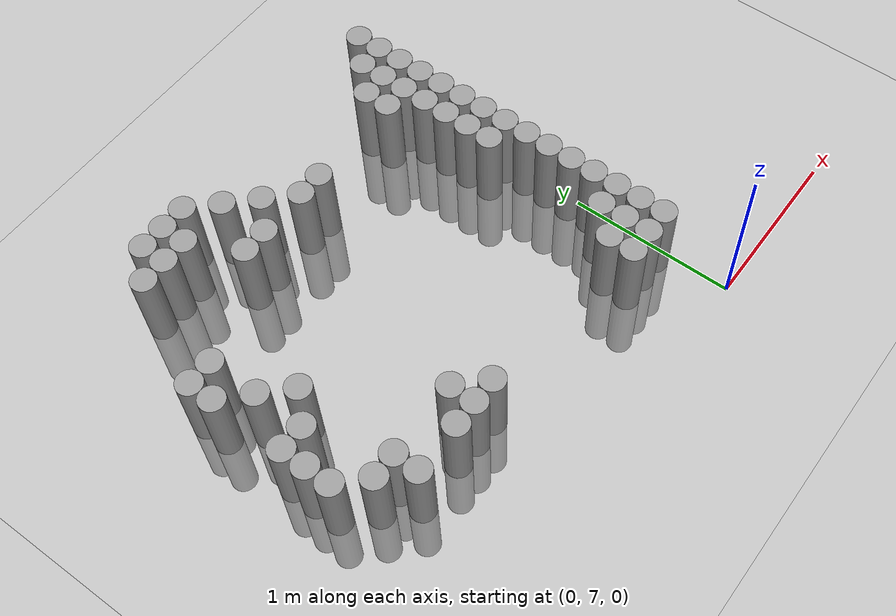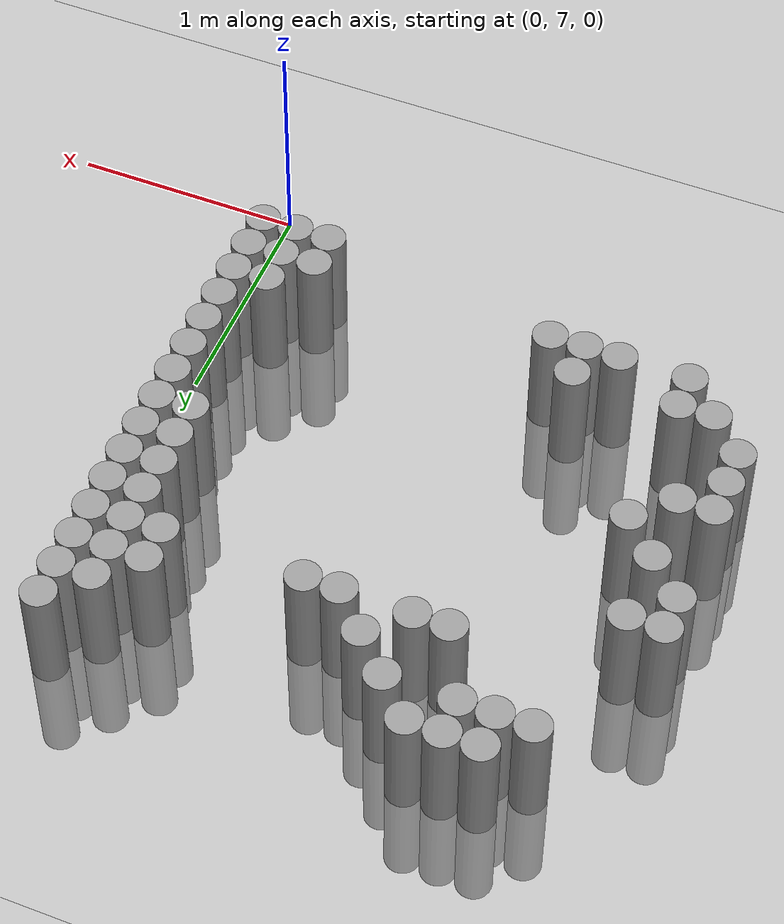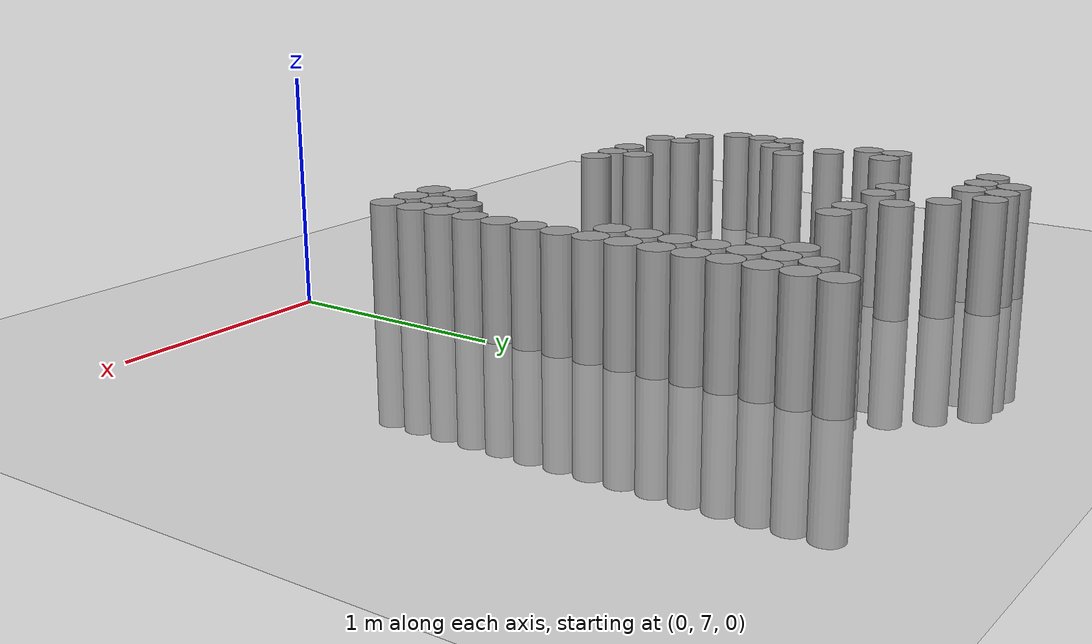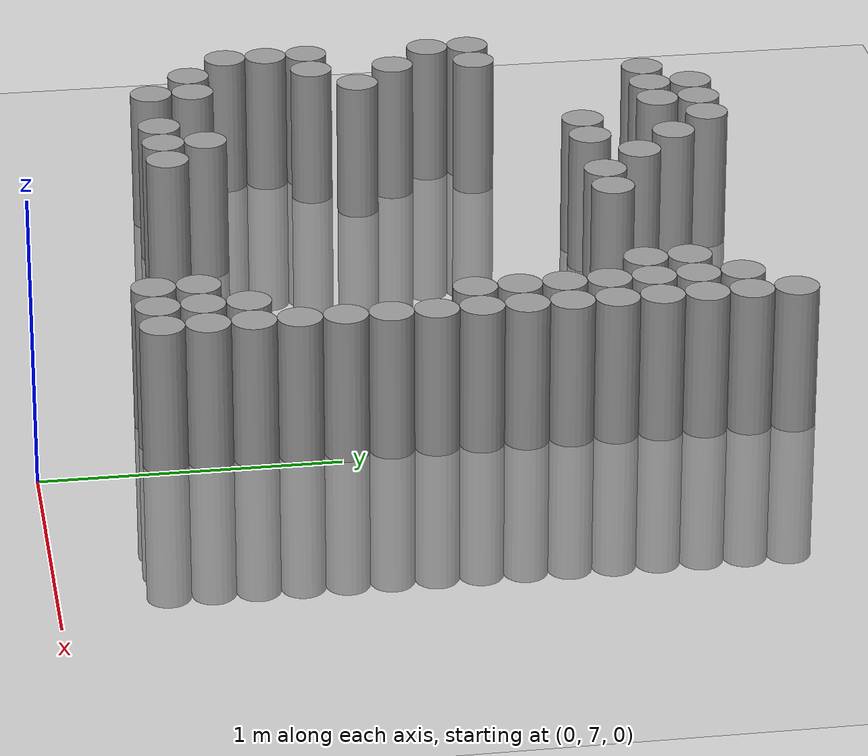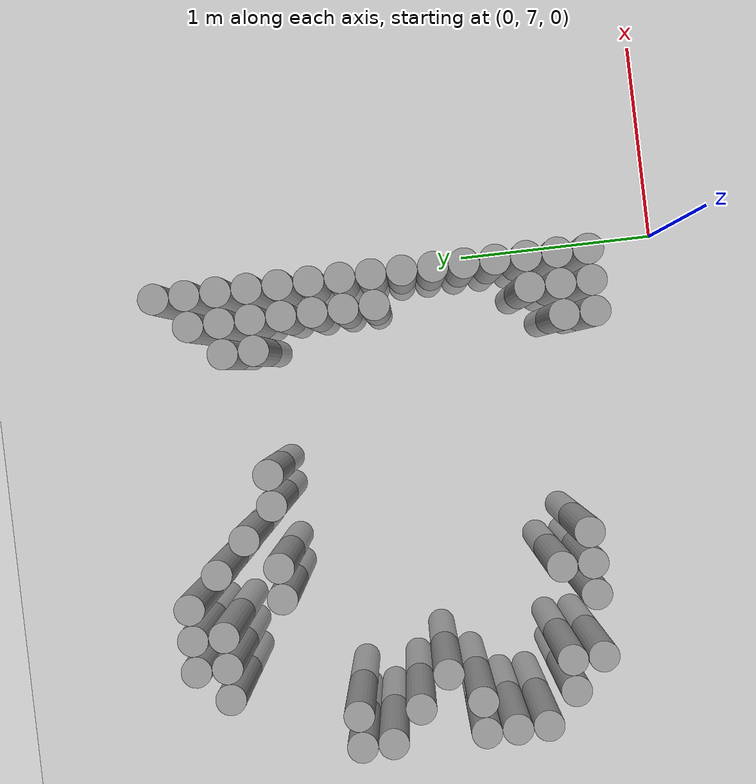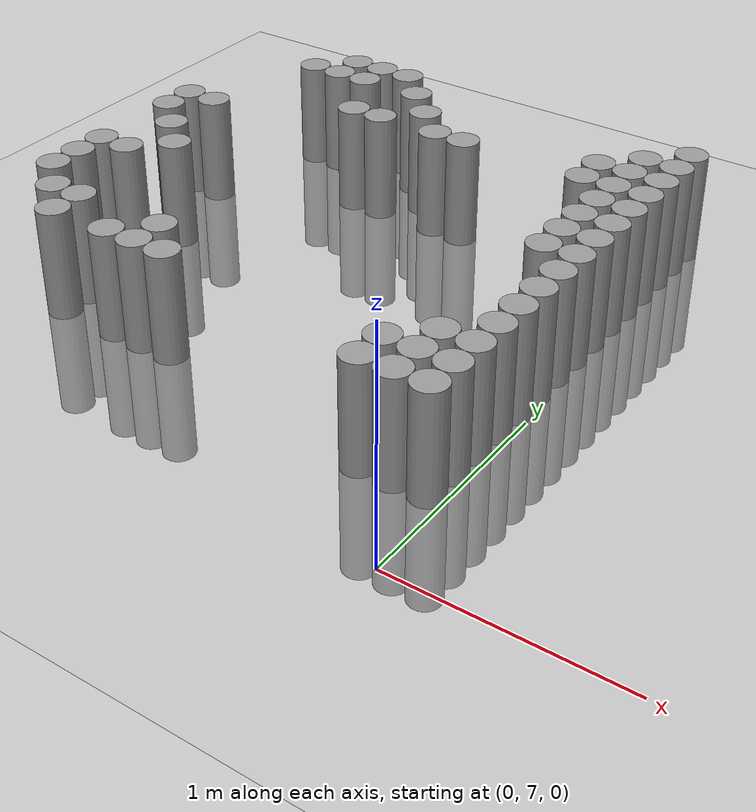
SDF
<sdf version="1.6">
 <world name="default">
  <model name="ground_plane">
   <static>1</static>
   <static>1</static>
   <link name="link">
    <collision name="collision">
     <geometry><plane><normal>0 0 1</normal><size>100 100</size></plane></geometry>
     <surface><friction><ode><mu>100</mu><mu2>50</mu2></ode></friction></surface>
    </collision>
    <visual name="visual">
     <cast_shadows>0</cast_shadows>
     <geometry><plane><normal>0 0 1</normal><size>100 100</size></plane></geometry>
     <material>
      <script><uri>file://media/materials/scripts/gazebo.material</uri><name>Gazebo/Grey</name></script>
     </material>
    </visual>
   </link>
  </model>
  <model name="unit_cylinder_164">
   <static>1</static>
   <pose>-2.325000 7.875000 0.000000 0.000000 0.000000 0.000000</pose>
   <link name="link">
    <inertial>
     <mass>1</mass>
     <inertia><ixx>0.145833</ixx><ixy>0</ixy><ixz>0</ixz><iyy>0.145833</iyy><iyz>0</iyz><izz>0.125</izz></inertia>
    </inertial>
    <collision name="collision">
     <geometry><cylinder><radius>0.075000</radius><length>1</length></cylinder></geometry>
    </collision>
    <visual name="visual">
     <geometry><cylinder><radius>0.075000</radius><length>1</length></cylinder></geometry>
     <material>
      <script><name>Gazebo/Grey</name><uri>file://media/materials/scripts/gazebo.material</uri></script>
     </material>
    </visual>
   </link>
  </model>
  <model name="unit_cylinder_165">
   <static>1</static>
   <pose>-2.325000 8.025000 0.000000 0.000000 0.000000 0.000000</pose>
   <link name="link">
    <inertial>
     <mass>1</mass>
     <inertia><ixx>0.145833</ixx><ixy>0</ixy><ixz>0</ixz><iyy>0.145833</iyy><iyz>0</iyz><izz>0.125</izz></inertia>
    </inertial>
    <collision name="collision">
     <geometry><cylinder><radius>0.075000</radius><length>1</length></cylinder></geometry>
    </collision>
    <visual name="visual">
     <geometry><cylinder><radius>0.075000</radius><length>1</length></cylinder></geometry>
     <material>
      <script><name>Gazebo/Grey</name><uri>file://media/materials/scripts/gazebo.material</uri></script>
     </material>
    </visual>
   </link>
  </model>
  <model name="unit_cylinder_166">
   <static>1</static>
   <pose>-2.325000 8.175000 0.000000 0.000000 0.000000 0.000000</pose>
   <link name="link">
    <inertial>
     <mass>1</mass>
     <inertia><ixx>0.145833</ixx><ixy>0</ixy><ixz>0</ixz><iyy>0.145833</iyy><iyz>0</iyz><izz>0.125</izz></inertia>
    </inertial>
    <collision name="collision">
     <geometry><cylinder><radius>0.075000</radius><length>1</length></cylinder></geometry>
    </collision>
    <visual name="visual">
     <geometry><cylinder><radius>0.075000</radius><length>1</length></cylinder></geometry>
     <material>
      <script><name>Gazebo/Grey</name><uri>file://media/materials/scripts/gazebo.material</uri></script>
     </material>
    </visual>
   </link>
  </model>
  <model name="unit_cylinder_167">
   <static>1</static>
   <pose>-2.325000 8.625000 0.000000 0.000000 0.000000 0.000000</pose>
   <link name="link">
    <inertial>
     <mass>1</mass>
     <inertia><ixx>0.145833</ixx><ixy>0</ixy><ixz>0</ixz><iyy>0.145833</iyy><iyz>0</iyz><izz>0.125</izz></inertia>
    </inertial>
    <collision name="collision">
     <geometry><cylinder><radius>0.075000</radius><length>1</length></cylinder></geometry>
    </collision>
    <visual name="visual">
     <geometry><cylinder><radius>0.075000</radius><length>1</length></cylinder></geometry>
     <material>
      <script><name>Gazebo/Grey</name><uri>file://media/materials/scripts/gazebo.material</uri></script>
     </material>
    </visual>
   </link>
  </model>
  <model name="unit_cylinder_168">
   <static>1</static>
   <pose>-2.325000 8.775000 0.000000 0.000000 0.000000 0.000000</pose>
   <link name="link">
    <inertial>
     <mass>1</mass>
     <inertia><ixx>0.145833</ixx><ixy>0</ixy><ixz>0</ixz><iyy>0.145833</iyy><iyz>0</iyz><izz>0.125</izz></inertia>
    </inertial>
    <collision name="collision">
     <geometry><cylinder><radius>0.075000</radius><length>1</length></cylinder></geometry>
    </collision>
    <visual name="visual">
     <geometry><cylinder><radius>0.075000</radius><length>1</length></cylinder></geometry>
     <material>
      <script><name>Gazebo/Grey</name><uri>file://media/materials/scripts/gazebo.material</uri></script>
     </material>
    </visual>
   </link>
  </model>
  <model name="unit_cylinder_170">
   <static>1</static>
   <pose>-2.175000 7.725000 0.000000 0.000000 0.000000 0.000000</pose>
   <link name="link">
    <inertial>
     <mass>1</mass>
     <inertia><ixx>0.145833</ixx><ixy>0</ixy><ixz>0</ixz><iyy>0.145833</iyy><iyz>0</iyz><izz>0.125</izz></inertia>
    </inertial>
    <collision name="collision">
     <geometry><cylinder><radius>0.075000</radius><length>1</length></cylinder></geometry>
    </collision>
    <visual name="visual">
     <geometry><cylinder><radius>0.075000</radius><length>1</length></cylinder></geometry>
     <material>
      <script><name>Gazebo/Grey</name><uri>file://media/materials/scripts/gazebo.material</uri></script>
     </material>
    </visual>
   </link>
  </model>
  <model name="unit_cylinder_171">
   <static>1</static>
   <pose>-2.175000 8.175000 0.000000 0.000000 0.000000 0.000000</pose>
   <link name="link">
    <inertial>
     <mass>1</mass>
     <inertia><ixx>0.145833</ixx><ixy>0</ixy><ixz>0</ixz><iyy>0.145833</iyy><iyz>0</iyz><izz>0.125</izz></inertia>
    </inertial>
    <collision name="collision">
     <geometry><cylinder><radius>0.075000</radius><length>1</length></cylinder></geometry>
    </collision>
    <visual name="visual">
     <geometry><cylinder><radius>0.075000</radius><length>1</length></cylinder></geometry>
     <material>
      <script><name>Gazebo/Grey</name><uri>file://media/materials/scripts/gazebo.material</uri></script>
     </material>
    </visual>
   </link>
  </model>
  <model name="unit_cylinder_172">
   <static>1</static>
   <pose>-2.175000 8.475000 0.000000 0.000000 0.000000 0.000000</pose>
   <link name="link">
    <inertial>
     <mass>1</mass>
     <inertia><ixx>0.145833</ixx><ixy>0</ixy><ixz>0</ixz><iyy>0.145833</iyy><iyz>0</iyz><izz>0.125</izz></inertia>
    </inertial>
    <collision name="collision">
     <geometry><cylinder><radius>0.075000</radius><length>1</length></cylinder></geometry>
    </collision>
    <visual name="visual">
     <geometry><cylinder><radius>0.075000</radius><length>1</length></cylinder></geometry>
     <material>
      <script><name>Gazebo/Grey</name><uri>file://media/materials/scripts/gazebo.material</uri></script>
     </material>
    </visual>
   </link>
  </model>
  <model name="unit_cylinder_173">
   <static>1</static>
   <pose>-2.175000 8.775000 0.000000 0.000000 0.000000 0.000000</pose>
   <link name="link">
    <inertial>
     <mass>1</mass>
     <inertia><ixx>0.145833</ixx><ixy>0</ixy><ixz>0</ixz><iyy>0.145833</iyy><iyz>0</iyz><izz>0.125</izz></inertia>
    </inertial>
    <collision name="collision">
     <geometry><cylinder><radius>0.075000</radius><length>1</length></cylinder></geometry>
    </collision>
    <visual name="visual">
     <geometry><cylinder><radius>0.075000</radius><length>1</length></cylinder></geometry>
     <material>
      <script><name>Gazebo/Grey</name><uri>file://media/materials/scripts/gazebo.material</uri></script>
     </material>
    </visual>
   </link>
  </model>
  <model name="unit_cylinder_175">
   <static>1</static>
   <pose>-2.025000 7.575000 0.000000 0.000000 0.000000 0.000000</pose>
   <link name="link">
    <inertial>
     <mass>1</mass>
     <inertia><ixx>0.145833</ixx><ixy>0</ixy><ixz>0</ixz><iyy>0.145833</iyy><iyz>0</iyz><izz>0.125</izz></inertia>
    </inertial>
    <collision name="collision">
     <geometry><cylinder><radius>0.075000</radius><length>1</length></cylinder></geometry>
    </collision>
    <visual name="visual">
     <geometry><cylinder><radius>0.075000</radius><length>1</length></cylinder></geometry>
     <material>
      <script><name>Gazebo/Grey</name><uri>file://media/materials/scripts/gazebo.material</uri></script>
     </material>
    </visual>
   </link>
  </model>
  <model name="unit_cylinder_176">
   <static>1</static>
   <pose>-2.025000 7.725000 0.000000 0.000000 0.000000 0.000000</pose>
   <link name="link">
    <inertial>
     <mass>1</mass>
     <inertia><ixx>0.145833</ixx><ixy>0</ixy><ixz>0</ixz><iyy>0.145833</iyy><iyz>0</iyz><izz>0.125</izz></inertia>
    </inertial>
    <collision name="collision">
     <geometry><cylinder><radius>0.075000</radius><length>1</length></cylinder></geometry>
    </collision>
    <visual name="visual">
     <geometry><cylinder><radius>0.075000</radius><length>1</length></cylinder></geometry>
     <material>
      <script><name>Gazebo/Grey</name><uri>file://media/materials/scripts/gazebo.material</uri></script>
     </material>
    </visual>
   </link>
  </model>
  <model name="unit_cylinder_177">
   <static>1</static>
   <pose>-2.025000 8.325000 0.000000 0.000000 0.000000 0.000000</pose>
   <link name="link">
    <inertial>
     <mass>1</mass>
     <inertia><ixx>0.145833</ixx><ixy>0</ixy><ixz>0</ixz><iyy>0.145833</iyy><iyz>0</iyz><izz>0.125</izz></inertia>
    </inertial>
    <collision name="collision">
     <geometry><cylinder><radius>0.075000</radius><length>1</length></cylinder></geometry>
    </collision>
    <visual name="visual">
     <geometry><cylinder><radius>0.075000</radius><length>1</length></cylinder></geometry>
     <material>
      <script><name>Gazebo/Grey</name><uri>file://media/materials/scripts/gazebo.material</uri></script>
     </material>
    </visual>
   </link>
  </model>
  <model name="unit_cylinder_178">
   <static>1</static>
   <pose>-2.025000 9.375000 0.000000 0.000000 0.000000 0.000000</pose>
   <link name="link">
    <inertial>
     <mass>1</mass>
     <inertia><ixx>0.145833</ixx><ixy>0</ixy><ixz>0</ixz><iyy>0.145833</iyy><iyz>0</iyz><izz>0.125</izz></inertia>
    </inertial>
    <collision name="collision">
     <geometry><cylinder><radius>0.075000</radius><length>1</length></cylinder></geometry>
    </collision>
    <visual name="visual">
     <geometry><cylinder><radius>0.075000</radius><length>1</length></cylinder></geometry>
     <material>
      <script><name>Gazebo/Grey</name><uri>file://media/materials/scripts/gazebo.material</uri></script>
     </material>
    </visual>
   </link>
  </model>
  <model name="unit_cylinder_182">
   <static>1</static>
   <pose>-1.875000 9.375000 0.000000 0.000000 0.000000 0.000000</pose>
   <link name="link">
    <inertial>
     <mass>1</mass>
     <inertia><ixx>0.145833</ixx><ixy>0</ixy><ixz>0</ixz><iyy>0.145833</iyy><iyz>0</iyz><izz>0.125</izz></inertia>
    </inertial>
    <collision name="collision">
     <geometry><cylinder><radius>0.075000</radius><length>1</length></cylinder></geometry>
    </collision>
    <visual name="visual">
     <geometry><cylinder><radius>0.075000</radius><length>1</length></cylinder></geometry>
     <material>
      <script><name>Gazebo/Grey</name><uri>file://media/materials/scripts/gazebo.material</uri></script>
     </material>
    </visual>
   </link>
  </model>
  <model name="unit_cylinder_183">
   <static>1</static>
   <pose>-1.875000 9.525000 0.000000 0.000000 0.000000 0.000000</pose>
   <link name="link">
    <inertial>
     <mass>1</mass>
     <inertia><ixx>0.145833</ixx><ixy>0</ixy><ixz>0</ixz><iyy>0.145833</iyy><iyz>0</iyz><izz>0.125</izz></inertia>
    </inertial>
    <collision name="collision">
     <geometry><cylinder><radius>0.075000</radius><length>1</length></cylinder></geometry>
    </collision>
    <visual name="visual">
     <geometry><cylinder><radius>0.075000</radius><length>1</length></cylinder></geometry>
     <material>
      <script><name>Gazebo/Grey</name><uri>file://media/materials/scripts/gazebo.material</uri></script>
     </material>
    </visual>
   </link>
  </model>
  <model name="unit_cylinder_186">
   <static>1</static>
   <pose>-1.725000 7.575000 0.000000 0.000000 0.000000 0.000000</pose>
   <link name="link">
    <inertial>
     <mass>1</mass>
     <inertia><ixx>0.145833</ixx><ixy>0</ixy><ixz>0</ixz><iyy>0.145833</iyy><iyz>0</iyz><izz>0.125</izz></inertia>
    </inertial>
    <collision name="collision">
     <geometry><cylinder><radius>0.075000</radius><length>1</length></cylinder></geometry>
    </collision>
    <visual name="visual">
     <geometry><cylinder><radius>0.075000</radius><length>1</length></cylinder></geometry>
     <material>
      <script><name>Gazebo/Grey</name><uri>file://media/materials/scripts/gazebo.material</uri></script>
     </material>
    </visual>
   </link>
  </model>
  <model name="unit_cylinder_187">
   <static>1</static>
   <pose>-1.725000 9.375000 0.000000 0.000000 0.000000 0.000000</pose>
   <link name="link">
    <inertial>
     <mass>1</mass>
     <inertia><ixx>0.145833</ixx><ixy>0</ixy><ixz>0</ixz><iyy>0.145833</iyy><iyz>0</iyz><izz>0.125</izz></inertia>
    </inertial>
    <collision name="collision">
     <geometry><cylinder><radius>0.075000</radius><length>1</length></cylinder></geometry>
    </collision>
    <visual name="visual">
     <geometry><cylinder><radius>0.075000</radius><length>1</length></cylinder></geometry>
     <material>
      <script><name>Gazebo/Grey</name><uri>file://media/materials/scripts/gazebo.material</uri></script>
     </material>
    </visual>
   </link>
  </model>
  <model name="unit_cylinder_188">
   <static>1</static>
   <pose>-1.725000 9.525000 0.000000 0.000000 0.000000 0.000000</pose>
   <link name="link">
    <inertial>
     <mass>1</mass>
     <inertia><ixx>0.145833</ixx><ixy>0</ixy><ixz>0</ixz><iyy>0.145833</iyy><iyz>0</iyz><izz>0.125</izz></inertia>
    </inertial>
    <collision name="collision">
     <geometry><cylinder><radius>0.075000</radius><length>1</length></cylinder></geometry>
    </collision>
    <visual name="visual">
     <geometry><cylinder><radius>0.075000</radius><length>1</length></cylinder></geometry>
     <material>
      <script><name>Gazebo/Grey</name><uri>file://media/materials/scripts/gazebo.material</uri></script>
     </material>
    </visual>
   </link>
  </model>
  <model name="unit_cylinder_192">
   <static>1</static>
   <pose>-1.575000 7.575000 0.000000 0.000000 0.000000 0.000000</pose>
   <link name="link">
    <inertial>
     <mass>1</mass>
     <inertia><ixx>0.145833</ixx><ixy>0</ixy><ixz>0</ixz><iyy>0.145833</iyy><iyz>0</iyz><izz>0.125</izz></inertia>
    </inertial>
    <collision name="collision">
     <geometry><cylinder><radius>0.075000</radius><length>1</length></cylinder></geometry>
    </collision>
    <visual name="visual">
     <geometry><cylinder><radius>0.075000</radius><length>1</length></cylinder></geometry>
     <material>
      <script><name>Gazebo/Grey</name><uri>file://media/materials/scripts/gazebo.material</uri></script>
     </material>
    </visual>
   </link>
  </model>
  <model name="unit_cylinder_193">
   <static>1</static>
   <pose>-1.575000 7.725000 0.000000 0.000000 0.000000 0.000000</pose>
   <link name="link">
    <inertial>
     <mass>1</mass>
     <inertia><ixx>0.145833</ixx><ixy>0</ixy><ixz>0</ixz><iyy>0.145833</iyy><iyz>0</iyz><izz>0.125</izz></inertia>
    </inertial>
    <collision name="collision">
     <geometry><cylinder><radius>0.075000</radius><length>1</length></cylinder></geometry>
    </collision>
    <visual name="visual">
     <geometry><cylinder><radius>0.075000</radius><length>1</length></cylinder></geometry>
     <material>
      <script><name>Gazebo/Grey</name><uri>file://media/materials/scripts/gazebo.material</uri></script>
     </material>
    </visual>
   </link>
  </model>
  <model name="unit_cylinder_194">
   <static>1</static>
   <pose>-1.575000 9.075000 0.000000 0.000000 0.000000 0.000000</pose>
   <link name="link">
    <inertial>
     <mass>1</mass>
     <inertia><ixx>0.145833</ixx><ixy>0</ixy><ixz>0</ixz><iyy>0.145833</iyy><iyz>0</iyz><izz>0.125</izz></inertia>
    </inertial>
    <collision name="collision">
     <geometry><cylinder><radius>0.075000</radius><length>1</length></cylinder></geometry>
    </collision>
    <visual name="visual">
     <geometry><cylinder><radius>0.075000</radius><length>1</length></cylinder></geometry>
     <material>
      <script><name>Gazebo/Grey</name><uri>file://media/materials/scripts/gazebo.material</uri></script>
     </material>
    </visual>
   </link>
  </model>
  <model name="unit_cylinder_195">
   <static>1</static>
   <pose>-1.575000 9.525000 0.000000 0.000000 0.000000 0.000000</pose>
   <link name="link">
    <inertial>
     <mass>1</mass>
     <inertia><ixx>0.145833</ixx><ixy>0</ixy><ixz>0</ixz><iyy>0.145833</iyy><iyz>0</iyz><izz>0.125</izz></inertia>
    </inertial>
    <collision name="collision">
     <geometry><cylinder><radius>0.075000</radius><length>1</length></cylinder></geometry>
    </collision>
    <visual name="visual">
     <geometry><cylinder><radius>0.075000</radius><length>1</length></cylinder></geometry>
     <material>
      <script><name>Gazebo/Grey</name><uri>file://media/materials/scripts/gazebo.material</uri></script>
     </material>
    </visual>
   </link>
  </model>
  <model name="unit_cylinder_200">
   <static>1</static>
   <pose>-1.425000 7.575000 0.000000 0.000000 0.000000 0.000000</pose>
   <link name="link">
    <inertial>
     <mass>1</mass>
     <inertia><ixx>0.145833</ixx><ixy>0</ixy><ixz>0</ixz><iyy>0.145833</iyy><iyz>0</iyz><izz>0.125</izz></inertia>
    </inertial>
    <collision name="collision">
     <geometry><cylinder><radius>0.075000</radius><length>1</length></cylinder></geometry>
    </collision>
    <visual name="visual">
     <geometry><cylinder><radius>0.075000</radius><length>1</length></cylinder></geometry>
     <material>
      <script><name>Gazebo/Grey</name><uri>file://media/materials/scripts/gazebo.material</uri></script>
     </material>
    </visual>
   </link>
  </model>
  <model name="unit_cylinder_201">
   <static>1</static>
   <pose>-1.425000 9.075000 0.000000 0.000000 0.000000 0.000000</pose>
   <link name="link">
    <inertial>
     <mass>1</mass>
     <inertia><ixx>0.145833</ixx><ixy>0</ixy><ixz>0</ixz><iyy>0.145833</iyy><iyz>0</iyz><izz>0.125</izz></inertia>
    </inertial>
    <collision name="collision">
     <geometry><cylinder><radius>0.075000</radius><length>1</length></cylinder></geometry>
    </collision>
    <visual name="visual">
     <geometry><cylinder><radius>0.075000</radius><length>1</length></cylinder></geometry>
     <material>
      <script><name>Gazebo/Grey</name><uri>file://media/materials/scripts/gazebo.material</uri></script>
     </material>
    </visual>
   </link>
  </model>
  <model name="unit_cylinder_202">
   <static>1</static>
   <pose>-1.425000 9.375000 0.000000 0.000000 0.000000 0.000000</pose>
   <link name="link">
    <inertial>
     <mass>1</mass>
     <inertia><ixx>0.145833</ixx><ixy>0</ixy><ixz>0</ixz><iyy>0.145833</iyy><iyz>0</iyz><izz>0.125</izz></inertia>
    </inertial>
    <collision name="collision">
     <geometry><cylinder><radius>0.075000</radius><length>1</length></cylinder></geometry>
    </collision>
    <visual name="visual">
     <geometry><cylinder><radius>0.075000</radius><length>1</length></cylinder></geometry>
     <material>
      <script><name>Gazebo/Grey</name><uri>file://media/materials/scripts/gazebo.material</uri></script>
     </material>
    </visual>
   </link>
  </model>
  <model name="unit_cylinder_207">
   <static>1</static>
   <pose>-1.275000 9.225000 0.000000 0.000000 0.000000 0.000000</pose>
   <link name="link">
    <inertial>
     <mass>1</mass>
     <inertia><ixx>0.145833</ixx><ixy>0</ixy><ixz>0</ixz><iyy>0.145833</iyy><iyz>0</iyz><izz>0.125</izz></inertia>
    </inertial>
    <collision name="collision">
     <geometry><cylinder><radius>0.075000</radius><length>1</length></cylinder></geometry>
    </collision>
    <visual name="visual">
     <geometry><cylinder><radius>0.075000</radius><length>1</length></cylinder></geometry>
     <material>
      <script><name>Gazebo/Grey</name><uri>file://media/materials/scripts/gazebo.material</uri></script>
     </material>
    </visual>
   </link>
  </model>
  <model name="unit_cylinder_214">
   <static>1</static>
   <pose>-1.125000 9.075000 0.000000 0.000000 0.000000 0.000000</pose>
   <link name="link">
    <inertial>
     <mass>1</mass>
     <inertia><ixx>0.145833</ixx><ixy>0</ixy><ixz>0</ixz><iyy>0.145833</iyy><iyz>0</iyz><izz>0.125</izz></inertia>
    </inertial>
    <collision name="collision">
     <geometry><cylinder><radius>0.075000</radius><length>1</length></cylinder></geometry>
    </collision>
    <visual name="visual">
     <geometry><cylinder><radius>0.075000</radius><length>1</length></cylinder></geometry>
     <material>
      <script><name>Gazebo/Grey</name><uri>file://media/materials/scripts/gazebo.material</uri></script>
     </material>
    </visual>
   </link>
  </model>
  <model name="unit_cylinder_218">
   <static>1</static>
   <pose>-0.975000 9.075000 0.000000 0.000000 0.000000 0.000000</pose>
   <link name="link">
    <inertial>
     <mass>1</mass>
     <inertia><ixx>0.145833</ixx><ixy>0</ixy><ixz>0</ixz><iyy>0.145833</iyy><iyz>0</iyz><izz>0.125</izz></inertia>
    </inertial>
    <collision name="collision">
     <geometry><cylinder><radius>0.075000</radius><length>1</length></cylinder></geometry>
    </collision>
    <visual name="visual">
     <geometry><cylinder><radius>0.075000</radius><length>1</length></cylinder></geometry>
     <material>
      <script><name>Gazebo/Grey</name><uri>file://media/materials/scripts/gazebo.material</uri></script>
     </material>
    </visual>
   </link>
  </model>
  <model name="unit_cylinder_232">
   <static>1</static>
   <pose>-0.375000 7.425000 0.000000 0.000000 0.000000 0.000000</pose>
   <link name="link">
    <inertial>
     <mass>1</mass>
     <inertia><ixx>0.145833</ixx><ixy>0</ixy><ixz>0</ixz><iyy>0.145833</iyy><iyz>0</iyz><izz>0.125</izz></inertia>
    </inertial>
    <collision name="collision">
     <geometry><cylinder><radius>0.075000</radius><length>1</length></cylinder></geometry>
    </collision>
    <visual name="visual">
     <geometry><cylinder><radius>0.075000</radius><length>1</length></cylinder></geometry>
     <material>
      <script><name>Gazebo/Grey</name><uri>file://media/materials/scripts/gazebo.material</uri></script>
     </material>
    </visual>
   </link>
  </model>
  <model name="unit_cylinder_233">
   <static>1</static>
   <pose>-0.375000 7.575000 0.000000 0.000000 0.000000 0.000000</pose>
   <link name="link">
    <inertial>
     <mass>1</mass>
     <inertia><ixx>0.145833</ixx><ixy>0</ixy><ixz>0</ixz><iyy>0.145833</iyy><iyz>0</iyz><izz>0.125</izz></inertia>
    </inertial>
    <collision name="collision">
     <geometry><cylinder><radius>0.075000</radius><length>1</length></cylinder></geometry>
    </collision>
    <visual name="visual">
     <geometry><cylinder><radius>0.075000</radius><length>1</length></cylinder></geometry>
     <material>
      <script><name>Gazebo/Grey</name><uri>file://media/materials/scripts/gazebo.material</uri></script>
     </material>
    </visual>
   </link>
  </model>
  <model name="unit_cylinder_234">
   <static>1</static>
   <pose>-0.375000 9.075000 0.000000 0.000000 0.000000 0.000000</pose>
   <link name="link">
    <inertial>
     <mass>1</mass>
     <inertia><ixx>0.145833</ixx><ixy>0</ixy><ixz>0</ixz><iyy>0.145833</iyy><iyz>0</iyz><izz>0.125</izz></inertia>
    </inertial>
    <collision name="collision">
     <geometry><cylinder><radius>0.075000</radius><length>1</length></cylinder></geometry>
    </collision>
    <visual name="visual">
     <geometry><cylinder><radius>0.075000</radius><length>1</length></cylinder></geometry>
     <material>
      <script><name>Gazebo/Grey</name><uri>file://media/materials/scripts/gazebo.material</uri></script>
     </material>
    </visual>
   </link>
  </model>
  <model name="unit_cylinder_235">
   <static>1</static>
   <pose>-0.375000 9.225000 0.000000 0.000000 0.000000 0.000000</pose>
   <link name="link">
    <inertial>
     <mass>1</mass>
     <inertia><ixx>0.145833</ixx><ixy>0</ixy><ixz>0</ixz><iyy>0.145833</iyy><iyz>0</iyz><izz>0.125</izz></inertia>
    </inertial>
    <collision name="collision">
     <geometry><cylinder><radius>0.075000</radius><length>1</length></cylinder></geometry>
    </collision>
    <visual name="visual">
     <geometry><cylinder><radius>0.075000</radius><length>1</length></cylinder></geometry>
     <material>
      <script><name>Gazebo/Grey</name><uri>file://media/materials/scripts/gazebo.material</uri></script>
     </material>
    </visual>
   </link>
  </model>
  <model name="unit_cylinder_246">
   <static>1</static>
   <pose>-0.225000 7.425000 0.000000 0.000000 0.000000 0.000000</pose>
   <link name="link">
    <inertial>
     <mass>1</mass>
     <inertia><ixx>0.145833</ixx><ixy>0</ixy><ixz>0</ixz><iyy>0.145833</iyy><iyz>0</iyz><izz>0.125</izz></inertia>
    </inertial>
    <collision name="collision">
     <geometry><cylinder><radius>0.075000</radius><length>1</length></cylinder></geometry>
    </collision>
    <visual name="visual">
     <geometry><cylinder><radius>0.075000</radius><length>1</length></cylinder></geometry>
     <material>
      <script><name>Gazebo/Grey</name><uri>file://media/materials/scripts/gazebo.material</uri></script>
     </material>
    </visual>
   </link>
  </model>
  <model name="unit_cylinder_247">
   <static>1</static>
   <pose>-0.225000 7.575000 0.000000 0.000000 0.000000 0.000000</pose>
   <link name="link">
    <inertial>
     <mass>1</mass>
     <inertia><ixx>0.145833</ixx><ixy>0</ixy><ixz>0</ixz><iyy>0.145833</iyy><iyz>0</iyz><izz>0.125</izz></inertia>
    </inertial>
    <collision name="collision">
     <geometry><cylinder><radius>0.075000</radius><length>1</length></cylinder></geometry>
    </collision>
    <visual name="visual">
     <geometry><cylinder><radius>0.075000</radius><length>1</length></cylinder></geometry>
     <material>
      <script><name>Gazebo/Grey</name><uri>file://media/materials/scripts/gazebo.material</uri></script>
     </material>
    </visual>
   </link>
  </model>
  <model name="unit_cylinder_248">
   <static>1</static>
   <pose>-0.225000 7.725000 0.000000 0.000000 0.000000 0.000000</pose>
   <link name="link">
    <inertial>
     <mass>1</mass>
     <inertia><ixx>0.145833</ixx><ixy>0</ixy><ixz>0</ixz><iyy>0.145833</iyy><iyz>0</iyz><izz>0.125</izz></inertia>
    </inertial>
    <collision name="collision">
     <geometry><cylinder><radius>0.075000</radius><length>1</length></cylinder></geometry>
    </collision>
    <visual name="visual">
     <geometry><cylinder><radius>0.075000</radius><length>1</length></cylinder></geometry>
     <material>
      <script><name>Gazebo/Grey</name><uri>file://media/materials/scripts/gazebo.material</uri></script>
     </material>
    </visual>
   </link>
  </model>
  <model name="unit_cylinder_249">
   <static>1</static>
   <pose>-0.225000 8.475000 0.000000 0.000000 0.000000 0.000000</pose>
   <link name="link">
    <inertial>
     <mass>1</mass>
     <inertia><ixx>0.145833</ixx><ixy>0</ixy><ixz>0</ixz><iyy>0.145833</iyy><iyz>0</iyz><izz>0.125</izz></inertia>
    </inertial>
    <collision name="collision">
     <geometry><cylinder><radius>0.075000</radius><length>1</length></cylinder></geometry>
    </collision>
    <visual name="visual">
     <geometry><cylinder><radius>0.075000</radius><length>1</length></cylinder></geometry>
     <material>
      <script><name>Gazebo/Grey</name><uri>file://media/materials/scripts/gazebo.material</uri></script>
     </material>
    </visual>
   </link>
  </model>
  <model name="unit_cylinder_250">
   <static>1</static>
   <pose>-0.225000 8.625000 0.000000 0.000000 0.000000 0.000000</pose>
   <link name="link">
    <inertial>
     <mass>1</mass>
     <inertia><ixx>0.145833</ixx><ixy>0</ixy><ixz>0</ixz><iyy>0.145833</iyy><iyz>0</iyz><izz>0.125</izz></inertia>
    </inertial>
    <collision name="collision">
     <geometry><cylinder><radius>0.075000</radius><length>1</length></cylinder></geometry>
    </collision>
    <visual name="visual">
     <geometry><cylinder><radius>0.075000</radius><length>1</length></cylinder></geometry>
     <material>
      <script><name>Gazebo/Grey</name><uri>file://media/materials/scripts/gazebo.material</uri></script>
     </material>
    </visual>
   </link>
  </model>
  <model name="unit_cylinder_251">
   <static>1</static>
   <pose>-0.225000 8.775000 0.000000 0.000000 0.000000 0.000000</pose>
   <link name="link">
    <inertial>
     <mass>1</mass>
     <inertia><ixx>0.145833</ixx><ixy>0</ixy><ixz>0</ixz><iyy>0.145833</iyy><iyz>0</iyz><izz>0.125</izz></inertia>
    </inertial>
    <collision name="collision">
     <geometry><cylinder><radius>0.075000</radius><length>1</length></cylinder></geometry>
    </collision>
    <visual name="visual">
     <geometry><cylinder><radius>0.075000</radius><length>1</length></cylinder></geometry>
     <material>
      <script><name>Gazebo/Grey</name><uri>file://media/materials/scripts/gazebo.material</uri></script>
     </material>
    </visual>
   </link>
  </model>
  <model name="unit_cylinder_252">
   <static>1</static>
   <pose>-0.225000 8.925000 0.000000 0.000000 0.000000 0.000000</pose>
   <link name="link">
    <inertial>
     <mass>1</mass>
     <inertia><ixx>0.145833</ixx><ixy>0</ixy><ixz>0</ixz><iyy>0.145833</iyy><iyz>0</iyz><izz>0.125</izz></inertia>
    </inertial>
    <collision name="collision">
     <geometry><cylinder><radius>0.075000</radius><length>1</length></cylinder></geometry>
    </collision>
    <visual name="visual">
     <geometry><cylinder><radius>0.075000</radius><length>1</length></cylinder></geometry>
     <material>
      <script><name>Gazebo/Grey</name><uri>file://media/materials/scripts/gazebo.material</uri></script>
     </material>
    </visual>
   </link>
  </model>
  <model name="unit_cylinder_253">
   <static>1</static>
   <pose>-0.225000 9.075000 0.000000 0.000000 0.000000 0.000000</pose>
   <link name="link">
    <inertial>
     <mass>1</mass>
     <inertia><ixx>0.145833</ixx><ixy>0</ixy><ixz>0</ixz><iyy>0.145833</iyy><iyz>0</iyz><izz>0.125</izz></inertia>
    </inertial>
    <collision name="collision">
     <geometry><cylinder><radius>0.075000</radius><length>1</length></cylinder></geometry>
    </collision>
    <visual name="visual">
     <geometry><cylinder><radius>0.075000</radius><length>1</length></cylinder></geometry>
     <material>
      <script><name>Gazebo/Grey</name><uri>file://media/materials/scripts/gazebo.material</uri></script>
     </material>
    </visual>
   </link>
  </model>
  <model name="unit_cylinder_254">
   <static>1</static>
   <pose>-0.225000 9.225000 0.000000 0.000000 0.000000 0.000000</pose>
   <link name="link">
    <inertial>
     <mass>1</mass>
     <inertia><ixx>0.145833</ixx><ixy>0</ixy><ixz>0</ixz><iyy>0.145833</iyy><iyz>0</iyz><izz>0.125</izz></inertia>
    </inertial>
    <collision name="collision">
     <geometry><cylinder><radius>0.075000</radius><length>1</length></cylinder></geometry>
    </collision>
    <visual name="visual">
     <geometry><cylinder><radius>0.075000</radius><length>1</length></cylinder></geometry>
     <material>
      <script><name>Gazebo/Grey</name><uri>file://media/materials/scripts/gazebo.material</uri></script>
     </material>
    </visual>
   </link>
  </model>
  <model name="unit_cylinder_255">
   <static>1</static>
   <pose>-0.225000 9.375000 0.000000 0.000000 0.000000 0.000000</pose>
   <link name="link">
    <inertial>
     <mass>1</mass>
     <inertia><ixx>0.145833</ixx><ixy>0</ixy><ixz>0</ixz><iyy>0.145833</iyy><iyz>0</iyz><izz>0.125</izz></inertia>
    </inertial>
    <collision name="collision">
     <geometry><cylinder><radius>0.075000</radius><length>1</length></cylinder></geometry>
    </collision>
    <visual name="visual">
     <geometry><cylinder><radius>0.075000</radius><length>1</length></cylinder></geometry>
     <material>
      <script><name>Gazebo/Grey</name><uri>file://media/materials/scripts/gazebo.material</uri></script>
     </material>
    </visual>
   </link>
  </model>
  <model name="unit_cylinder_271">
   <static>1</static>
   <pose>-0.075000 7.425000 0.000000 0.000000 0.000000 0.000000</pose>
   <link name="link">
    <inertial>
     <mass>1</mass>
     <inertia><ixx>0.145833</ixx><ixy>0</ixy><ixz>0</ixz><iyy>0.145833</iyy><iyz>0</iyz><izz>0.125</izz></inertia>
    </inertial>
    <collision name="collision">
     <geometry><cylinder><radius>0.075000</radius><length>1</length></cylinder></geometry>
    </collision>
    <visual name="visual">
     <geometry><cylinder><radius>0.075000</radius><length>1</length></cylinder></geometry>
     <material>
      <script><name>Gazebo/Grey</name><uri>file://media/materials/scripts/gazebo.material</uri></script>
     </material>
    </visual>
   </link>
  </model>
  <model name="unit_cylinder_272">
   <static>1</static>
   <pose>-0.075000 7.575000 0.000000 0.000000 0.000000 0.000000</pose>
   <link name="link">
    <inertial>
     <mass>1</mass>
     <inertia><ixx>0.145833</ixx><ixy>0</ixy><ixz>0</ixz><iyy>0.145833</iyy><iyz>0</iyz><izz>0.125</izz></inertia>
    </inertial>
    <collision name="collision">
     <geometry><cylinder><radius>0.075000</radius><length>1</length></cylinder></geometry>
    </collision>
    <visual name="visual">
     <geometry><cylinder><radius>0.075000</radius><length>1</length></cylinder></geometry>
     <material>
      <script><name>Gazebo/Grey</name><uri>file://media/materials/scripts/gazebo.material</uri></script>
     </material>
    </visual>
   </link>
  </model>
  <model name="unit_cylinder_273">
   <static>1</static>
   <pose>-0.075000 7.725000 0.000000 0.000000 0.000000 0.000000</pose>
   <link name="link">
    <inertial>
     <mass>1</mass>
     <inertia><ixx>0.145833</ixx><ixy>0</ixy><ixz>0</ixz><iyy>0.145833</iyy><iyz>0</iyz><izz>0.125</izz></inertia>
    </inertial>
    <collision name="collision">
     <geometry><cylinder><radius>0.075000</radius><length>1</length></cylinder></geometry>
    </collision>
    <visual name="visual">
     <geometry><cylinder><radius>0.075000</radius><length>1</length></cylinder></geometry>
     <material>
      <script><name>Gazebo/Grey</name><uri>file://media/materials/scripts/gazebo.material</uri></script>
     </material>
    </visual>
   </link>
  </model>
  <model name="unit_cylinder_274">
   <static>1</static>
   <pose>-0.075000 7.875000 0.000000 0.000000 0.000000 0.000000</pose>
   <link name="link">
    <inertial>
     <mass>1</mass>
     <inertia><ixx>0.145833</ixx><ixy>0</ixy><ixz>0</ixz><iyy>0.145833</iyy><iyz>0</iyz><izz>0.125</izz></inertia>
    </inertial>
    <collision name="collision">
     <geometry><cylinder><radius>0.075000</radius><length>1</length></cylinder></geometry>
    </collision>
    <visual name="visual">
     <geometry><cylinder><radius>0.075000</radius><length>1</length></cylinder></geometry>
     <material>
      <script><name>Gazebo/Grey</name><uri>file://media/materials/scripts/gazebo.material</uri></script>
     </material>
    </visual>
   </link>
  </model>
  <model name="unit_cylinder_275">
   <static>1</static>
   <pose>-0.075000 8.025000 0.000000 0.000000 0.000000 0.000000</pose>
   <link name="link">
    <inertial>
     <mass>1</mass>
     <inertia><ixx>0.145833</ixx><ixy>0</ixy><ixz>0</ixz><iyy>0.145833</iyy><iyz>0</iyz><izz>0.125</izz></inertia>
    </inertial>
    <collision name="collision">
     <geometry><cylinder><radius>0.075000</radius><length>1</length></cylinder></geometry>
    </collision>
    <visual name="visual">
     <geometry><cylinder><radius>0.075000</radius><length>1</length></cylinder></geometry>
     <material>
      <script><name>Gazebo/Grey</name><uri>file://media/materials/scripts/gazebo.material</uri></script>
     </material>
    </visual>
   </link>
  </model>
  <model name="unit_cylinder_276">
   <static>1</static>
   <pose>-0.075000 8.175000 0.000000 0.000000 0.000000 0.000000</pose>
   <link name="link">
    <inertial>
     <mass>1</mass>
     <inertia><ixx>0.145833</ixx><ixy>0</ixy><ixz>0</ixz><iyy>0.145833</iyy><iyz>0</iyz><izz>0.125</izz></inertia>
    </inertial>
    <collision name="collision">
     <geometry><cylinder><radius>0.075000</radius><length>1</length></cylinder></geometry>
    </collision>
    <visual name="visual">
     <geometry><cylinder><radius>0.075000</radius><length>1</length></cylinder></geometry>
     <material>
      <script><name>Gazebo/Grey</name><uri>file://media/materials/scripts/gazebo.material</uri></script>
     </material>
    </visual>
   </link>
  </model>
  <model name="unit_cylinder_277">
   <static>1</static>
   <pose>-0.075000 8.325000 0.000000 0.000000 0.000000 0.000000</pose>
   <link name="link">
    <inertial>
     <mass>1</mass>
     <inertia><ixx>0.145833</ixx><ixy>0</ixy><ixz>0</ixz><iyy>0.145833</iyy><iyz>0</iyz><izz>0.125</izz></inertia>
    </inertial>
    <collision name="collision">
     <geometry><cylinder><radius>0.075000</radius><length>1</length></cylinder></geometry>
    </collision>
    <visual name="visual">
     <geometry><cylinder><radius>0.075000</radius><length>1</length></cylinder></geometry>
     <material>
      <script><name>Gazebo/Grey</name><uri>file://media/materials/scripts/gazebo.material</uri></script>
     </material>
    </visual>
   </link>
  </model>
  <model name="unit_cylinder_278">
   <static>1</static>
   <pose>-0.075000 8.475000 0.000000 0.000000 0.000000 0.000000</pose>
   <link name="link">
    <inertial>
     <mass>1</mass>
     <inertia><ixx>0.145833</ixx><ixy>0</ixy><ixz>0</ixz><iyy>0.145833</iyy><iyz>0</iyz><izz>0.125</izz></inertia>
    </inertial>
    <collision name="collision">
     <geometry><cylinder><radius>0.075000</radius><length>1</length></cylinder></geometry>
    </collision>
    <visual name="visual">
     <geometry><cylinder><radius>0.075000</radius><length>1</length></cylinder></geometry>
     <material>
      <script><name>Gazebo/Grey</name><uri>file://media/materials/scripts/gazebo.material</uri></script>
     </material>
    </visual>
   </link>
  </model>
  <model name="unit_cylinder_279">
   <static>1</static>
   <pose>-0.075000 8.625000 0.000000 0.000000 0.000000 0.000000</pose>
   <link name="link">
    <inertial>
     <mass>1</mass>
     <inertia><ixx>0.145833</ixx><ixy>0</ixy><ixz>0</ixz><iyy>0.145833</iyy><iyz>0</iyz><izz>0.125</izz></inertia>
    </inertial>
    <collision name="collision">
     <geometry><cylinder><radius>0.075000</radius><length>1</length></cylinder></geometry>
    </collision>
    <visual name="visual">
     <geometry><cylinder><radius>0.075000</radius><length>1</length></cylinder></geometry>
     <material>
      <script><name>Gazebo/Grey</name><uri>file://media/materials/scripts/gazebo.material</uri></script>
     </material>
    </visual>
   </link>
  </model>
  <model name="unit_cylinder_280">
   <static>1</static>
   <pose>-0.075000 8.775000 0.000000 0.000000 0.000000 0.000000</pose>
   <link name="link">
    <inertial>
     <mass>1</mass>
     <inertia><ixx>0.145833</ixx><ixy>0</ixy><ixz>0</ixz><iyy>0.145833</iyy><iyz>0</iyz><izz>0.125</izz></inertia>
    </inertial>
    <collision name="collision">
     <geometry><cylinder><radius>0.075000</radius><length>1</length></cylinder></geometry>
    </collision>
    <visual name="visual">
     <geometry><cylinder><radius>0.075000</radius><length>1</length></cylinder></geometry>
     <material>
      <script><name>Gazebo/Grey</name><uri>file://media/materials/scripts/gazebo.material</uri></script>
     </material>
    </visual>
   </link>
  </model>
  <model name="unit_cylinder_281">
   <static>1</static>
   <pose>-0.075000 8.925000 0.000000 0.000000 0.000000 0.000000</pose>
   <link name="link">
    <inertial>
     <mass>1</mass>
     <inertia><ixx>0.145833</ixx><ixy>0</ixy><ixz>0</ixz><iyy>0.145833</iyy><iyz>0</iyz><izz>0.125</izz></inertia>
    </inertial>
    <collision name="collision">
     <geometry><cylinder><radius>0.075000</radius><length>1</length></cylinder></geometry>
    </collision>
    <visual name="visual">
     <geometry><cylinder><radius>0.075000</radius><length>1</length></cylinder></geometry>
     <material>
      <script><name>Gazebo/Grey</name><uri>file://media/materials/scripts/gazebo.material</uri></script>
     </material>
    </visual>
   </link>
  </model>
  <model name="unit_cylinder_282">
   <static>1</static>
   <pose>-0.075000 9.075000 0.000000 0.000000 0.000000 0.000000</pose>
   <link name="link">
    <inertial>
     <mass>1</mass>
     <inertia><ixx>0.145833</ixx><ixy>0</ixy><ixz>0</ixz><iyy>0.145833</iyy><iyz>0</iyz><izz>0.125</izz></inertia>
    </inertial>
    <collision name="collision">
     <geometry><cylinder><radius>0.075000</radius><length>1</length></cylinder></geometry>
    </collision>
    <visual name="visual">
     <geometry><cylinder><radius>0.075000</radius><length>1</length></cylinder></geometry>
     <material>
      <script><name>Gazebo/Grey</name><uri>file://media/materials/scripts/gazebo.material</uri></script>
     </material>
    </visual>
   </link>
  </model>
  <model name="unit_cylinder_283">
   <static>1</static>
   <pose>-0.075000 9.225000 0.000000 0.000000 0.000000 0.000000</pose>
   <link name="link">
    <inertial>
     <mass>1</mass>
     <inertia><ixx>0.145833</ixx><ixy>0</ixy><ixz>0</ixz><iyy>0.145833</iyy><iyz>0</iyz><izz>0.125</izz></inertia>
    </inertial>
    <collision name="collision">
     <geometry><cylinder><radius>0.075000</radius><length>1</length></cylinder></geometry>
    </collision>
    <visual name="visual">
     <geometry><cylinder><radius>0.075000</radius><length>1</length></cylinder></geometry>
     <material>
      <script><name>Gazebo/Grey</name><uri>file://media/materials/scripts/gazebo.material</uri></script>
     </material>
    </visual>
   </link>
  </model>
  <model name="unit_cylinder_284">
   <static>1</static>
   <pose>-0.075000 9.375000 0.000000 0.000000 0.000000 0.000000</pose>
   <link name="link">
    <inertial>
     <mass>1</mass>
     <inertia><ixx>0.145833</ixx><ixy>0</ixy><ixz>0</ixz><iyy>0.145833</iyy><iyz>0</iyz><izz>0.125</izz></inertia>
    </inertial>
    <collision name="collision">
     <geometry><cylinder><radius>0.075000</radius><length>1</length></cylinder></geometry>
    </collision>
    <visual name="visual">
     <geometry><cylinder><radius>0.075000</radius><length>1</length></cylinder></geometry>
     <material>
      <script><name>Gazebo/Grey</name><uri>file://media/materials/scripts/gazebo.material</uri></script>
     </material>
    </visual>
   </link>
  </model>
  <model name="unit_cylinder_285">
   <static>1</static>
   <pose>-0.075000 9.525000 0.000000 0.000000 0.000000 0.000000</pose>
   <link name="link">
    <inertial>
     <mass>1</mass>
     <inertia><ixx>0.145833</ixx><ixy>0</ixy><ixz>0</ixz><iyy>0.145833</iyy><iyz>0</iyz><izz>0.125</izz></inertia>
    </inertial>
    <collision name="collision">
     <geometry><cylinder><radius>0.075000</radius><length>1</length></cylinder></geometry>
    </collision>
    <visual name="visual">
     <geometry><cylinder><radius>0.075000</radius><length>1</length></cylinder></geometry>
     <material>
      <script><name>Gazebo/Grey</name><uri>file://media/materials/scripts/gazebo.material</uri></script>
     </material>
    </visual>
   </link>
  </model>
 </world>
</sdf>
